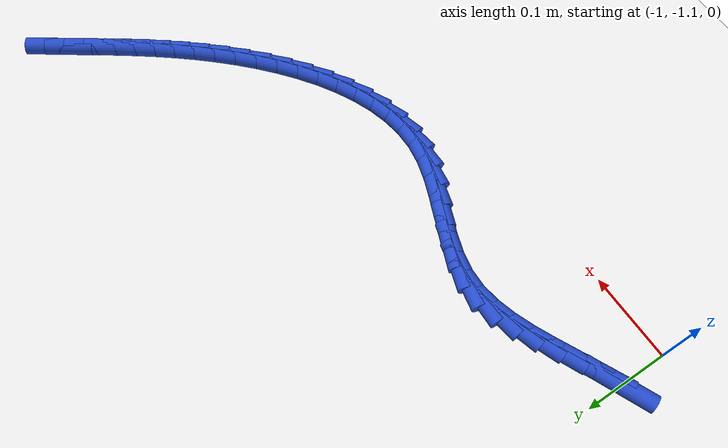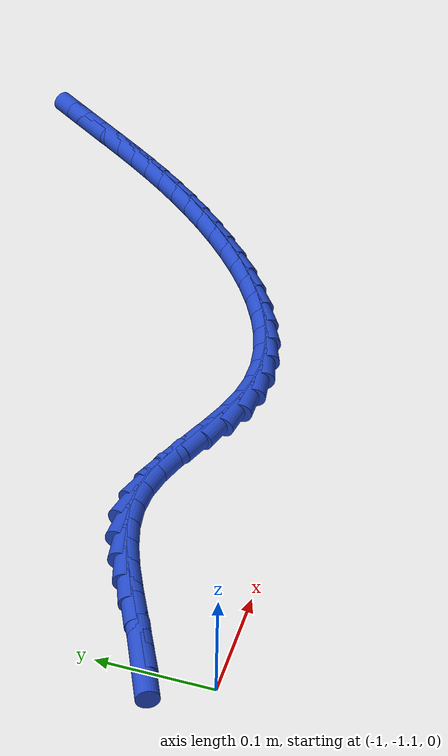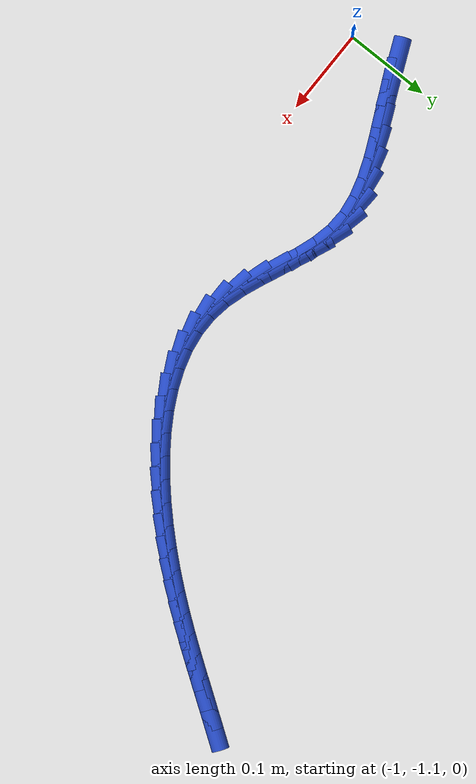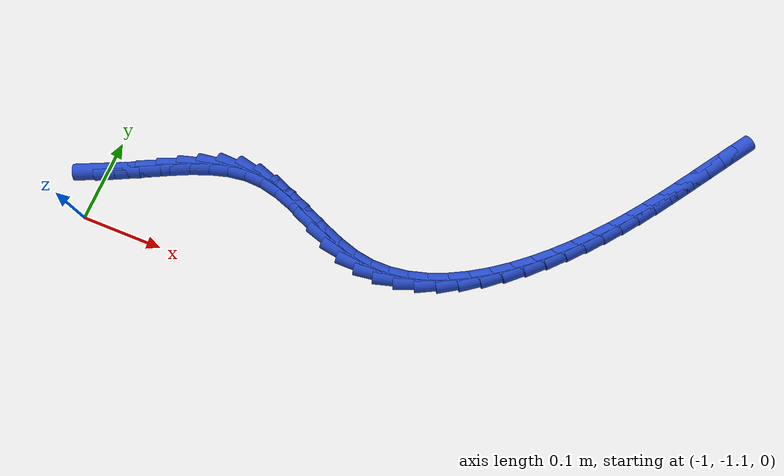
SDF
<sdf version="1.6">
 <world name="default">
  <model name="ground_plane">
   <static>1</static>
   <link name="link">
    <collision name="collision">
     <geometry><plane><normal>0 0 1</normal><size>100 100</size></plane></geometry>
     <surface><friction><ode><mu>100</mu><mu2>50</mu2></ode></friction></surface>
    </collision>
    <visual name="visual">
     <cast_shadows>0</cast_shadows>
     <geometry><plane><normal>0 0 1</normal><size>100 100</size></plane></geometry>
     <material>
      <script><uri>file://media/materials/scripts/gazebo.material</uri><name>Gazebo/WhiteGlow</name></script>
     </material>
    </visual>
   </link>
  </model>
  <model name="line">
   <link name="link_211">
    <pose>-0.9968731925004047 -1.0389388240476132 0.01 0 1.57 0.419564557038554</pose>
    <collision name="collision">
     <geometry><cylinder><radius>0.01</radius><length>0.08</length></cylinder></geometry>
    </collision>
    <visual name="visual">
     <material>
      <script><name>Gazebo/Blue</name><uri>file://media/materials/scripts/gazebo.material</uri></script>
     </material>
     <geometry><cylinder><radius>0.01</radius><length>0.08</length></cylinder></geometry>
    </visual>
   </link>
   <link name="link_212">
    <pose>-0.9742843106330069 -1.0288630450292005 0.01 0 1.57 0.45181146695604313</pose>
    <collision name="collision">
     <geometry><cylinder><radius>0.01</radius><length>0.08</length></cylinder></geometry>
    </collision>
    <visual name="visual">
     <material>
      <script><name>Gazebo/Blue</name><uri>file://media/materials/scripts/gazebo.material</uri></script>
     </material>
     <geometry><cylinder><radius>0.01</radius><length>0.08</length></cylinder></geometry>
    </visual>
   </link>
   <link name="link_213">
    <pose>-0.9517800366374914 -1.017941919270687 0.01 0 1.57 0.45444266028596175</pose>
    <collision name="collision">
     <geometry><cylinder><radius>0.01</radius><length>0.08</length></cylinder></geometry>
    </collision>
    <visual name="visual">
     <material>
      <script><name>Gazebo/Blue</name><uri>file://media/materials/scripts/gazebo.material</uri></script>
     </material>
     <geometry><cylinder><radius>0.01</radius><length>0.08</length></cylinder></geometry>
    </visual>
   </link>
   <link name="link_214">
    <pose>-0.9293437762485094 -1.0069807693718802 0.01 0 1.57 0.42740189036947934</pose>
    <collision name="collision">
     <geometry><cylinder><radius>0.01</radius><length>0.08</length></cylinder></geometry>
    </collision>
    <visual name="visual">
     <material>
      <script><name>Gazebo/Blue</name><uri>file://media/materials/scripts/gazebo.material</uri></script>
     </material>
     <geometry><cylinder><radius>0.01</radius><length>0.08</length></cylinder></geometry>
    </visual>
   </link>
   <link name="link_215">
    <pose>-0.9069589352007125 -0.9967849179325879 0.01 0 1.57 0.36830641305981954</pose>
    <collision name="collision">
     <geometry><cylinder><radius>0.01</radius><length>0.08</length></cylinder></geometry>
    </collision>
    <visual name="visual">
     <material>
      <script><name>Gazebo/Blue</name><uri>file://media/materials/scripts/gazebo.material</uri></script>
     </material>
     <geometry><cylinder><radius>0.01</radius><length>0.08</length></cylinder></geometry>
    </visual>
   </link>
   <link name="link_216">
    <pose>-0.8846089192287524 -0.9881596875526178 0.01 0 1.57 0.2728586662731743</pose>
    <collision name="collision">
     <geometry><cylinder><radius>0.01</radius><length>0.08</length></cylinder></geometry>
    </collision>
    <visual name="visual">
     <material>
      <script><name>Gazebo/Blue</name><uri>file://media/materials/scripts/gazebo.material</uri></script>
     </material>
     <geometry><cylinder><radius>0.01</radius><length>0.08</length></cylinder></geometry>
    </visual>
   </link>
   <link name="link_217">
    <pose>-0.8622771340672796 -0.9819104008317774 0.01 0 1.57 0.13653877726404418</pose>
    <collision name="collision">
     <geometry><cylinder><radius>0.01</radius><length>0.08</length></cylinder></geometry>
    </collision>
    <visual name="visual">
     <material>
      <script><name>Gazebo/Blue</name><uri>file://media/materials/scripts/gazebo.material</uri></script>
     </material>
     <geometry><cylinder><radius>0.01</radius><length>0.08</length></cylinder></geometry>
    </visual>
   </link>
   <link name="link_218">
    <pose>-0.8399469854509473 -0.9788423803698753 0.01 0 1.57 -0.040540378335870896</pose>
    <collision name="collision">
     <geometry><cylinder><radius>0.01</radius><length>0.08</length></cylinder></geometry>
    </collision>
    <visual name="visual">
     <material>
      <script><name>Gazebo/Blue</name><uri>file://media/materials/scripts/gazebo.material</uri></script>
     </material>
     <geometry><cylinder><radius>0.01</radius><length>0.08</length></cylinder></geometry>
    </visual>
   </link>
   <link name="link_219">
    <pose>-0.8176018976384558 -0.9797487552872787 0.01 0 1.57 -0.21650716110513113</pose>
    <collision name="collision">
     <geometry><cylinder><radius>0.01</radius><length>0.08</length></cylinder></geometry>
    </collision>
    <visual name="visual">
     <material>
      <script><name>Gazebo/Blue</name><uri>file://media/materials/scripts/gazebo.material</uri></script>
     </material>
     <geometry><cylinder><radius>0.01</radius><length>0.08</length></cylinder></geometry>
    </visual>
   </link>
   <link name="link_220">
    <pose>-0.7952264377808024 -0.984670344378 0.01 0 1.57 -0.33479258366477077</pose>
    <collision name="collision">
     <geometry><cylinder><radius>0.01</radius><length>0.08</length></cylinder></geometry>
    </collision>
    <visual name="visual">
     <material>
      <script><name>Gazebo/Blue</name><uri>file://media/materials/scripts/gazebo.material</uri></script>
     </material>
     <geometry><cylinder><radius>0.01</radius><length>0.08</length></cylinder></geometry>
    </visual>
   </link>
   <link name="link_221">
    <pose>-0.7728069628360114 -0.9924698236556881 0.01 0 1.57 -0.3975125090517236</pose>
    <collision name="collision">
     <geometry><cylinder><radius>0.01</radius><length>0.08</length></cylinder></geometry>
    </collision>
    <visual name="visual">
     <material>
      <script><name>Gazebo/Blue</name><uri>file://media/materials/scripts/gazebo.material</uri></script>
     </material>
     <geometry><cylinder><radius>0.01</radius><length>0.08</length></cylinder></geometry>
    </visual>
   </link>
   <link name="link_222">
    <pose>-0.7503299858857498 -1.0019071005451383 0.01 0 1.57 -0.4113023493079876</pose>
    <collision name="collision">
     <geometry><cylinder><radius>0.01</radius><length>0.08</length></cylinder></geometry>
    </collision>
    <visual name="visual">
     <material>
      <script><name>Gazebo/Blue</name><uri>file://media/materials/scripts/gazebo.material</uri></script>
     </material>
     <geometry><cylinder><radius>0.01</radius><length>0.08</length></cylinder></geometry>
    </visual>
   </link>
   <link name="link_223">
    <pose>-0.7277820200116841 -1.0117420824711458 0.01 0 1.57 -0.37820430350389667</pose>
    <collision name="collision">
     <geometry><cylinder><radius>0.01</radius><length>0.08</length></cylinder></geometry>
    </collision>
    <visual name="visual">
     <material>
      <script><name>Gazebo/Blue</name><uri>file://media/materials/scripts/gazebo.material</uri></script>
     </material>
     <geometry><cylinder><radius>0.01</radius><length>0.08</length></cylinder></geometry>
    </visual>
   </link>
   <link name="link_224">
    <pose>-0.7051495782954812 -1.0207346768585064 0.01 0 1.57 -0.2951253391175788</pose>
    <collision name="collision">
     <geometry><cylinder><radius>0.01</radius><length>0.08</length></cylinder></geometry>
    </collision>
    <visual name="visual">
     <material>
      <script><name>Gazebo/Blue</name><uri>file://media/materials/scripts/gazebo.material</uri></script>
     </material>
     <geometry><cylinder><radius>0.01</radius><length>0.08</length></cylinder></geometry>
    </visual>
   </link>
   <link name="link_225">
    <pose>-0.6824191738188075 -1.0276447911320146 0.01 0 1.57 -0.15804007501959652</pose>
    <collision name="collision">
     <geometry><cylinder><radius>0.01</radius><length>0.08</length></cylinder></geometry>
    </collision>
    <visual name="visual">
     <material>
      <script><name>Gazebo/Blue</name><uri>file://media/materials/scripts/gazebo.material</uri></script>
     </material>
     <geometry><cylinder><radius>0.01</radius><length>0.08</length></cylinder></geometry>
    </visual>
   </link>
   <link name="link_226">
    <pose>-0.6595813993898523 -1.0312844272838904 0.01 0 1.57 -0.0004760070906418708</pose>
    <collision name="collision">
     <geometry><cylinder><radius>0.01</radius><length>0.08</length></cylinder></geometry>
    </collision>
    <visual name="visual">
     <material>
      <script><name>Gazebo/Blue</name><uri>file://media/materials/scripts/gazebo.material</uri></script>
     </material>
     <geometry><cylinder><radius>0.01</radius><length>0.08</length></cylinder></geometry>
    </visual>
   </link>
   <link name="link_227">
    <pose>-0.6366918276104232 -1.031295322883182 0.01 0 1.57 0.14398681662672275</pose>
    <collision name="collision">
     <geometry><cylinder><radius>0.01</radius><length>0.08</length></cylinder></geometry>
    </collision>
    <visual name="visual">
     <material>
      <script><name>Gazebo/Blue</name><uri>file://media/materials/scripts/gazebo.material</uri></script>
     </material>
     <geometry><cylinder><radius>0.01</radius><length>0.08</length></cylinder></geometry>
    </visual>
   </link>
   <link name="link_228">
    <pose>-0.6138581448281326 -1.0279846628100278 0.01 0 1.57 0.2713338922734599</pose>
    <collision name="collision">
     <geometry><cylinder><radius>0.01</radius><length>0.08</length></cylinder></geometry>
    </collision>
    <visual name="visual">
     <material>
      <script><name>Gazebo/Blue</name><uri>file://media/materials/scripts/gazebo.material</uri></script>
     </material>
     <geometry><cylinder><radius>0.01</radius><length>0.08</length></cylinder></geometry>
    </visual>
   </link>
   <link name="link_229">
    <pose>-0.5911895045721061 -1.021678366579299 0.01 0 1.57 0.38120813951009463</pose>
    <collision name="collision">
     <geometry><cylinder><radius>0.01</radius><length>0.08</length></cylinder></geometry>
    </collision>
    <visual name="visual">
     <material>
      <script><name>Gazebo/Blue</name><uri>file://media/materials/scripts/gazebo.material</uri></script>
     </material>
     <geometry><cylinder><radius>0.01</radius><length>0.08</length></cylinder></geometry>
    </visual>
   </link>
   <link name="link_230">
    <pose>-0.5687950603714688 -1.0127023537058661 0.01 0 1.57 0.4750042346008791</pose>
    <collision name="collision">
     <geometry><cylinder><radius>0.01</radius><length>0.08</length></cylinder></geometry>
    </collision>
    <visual name="visual">
     <material>
      <script><name>Gazebo/Blue</name><uri>file://media/materials/scripts/gazebo.material</uri></script>
     </material>
     <geometry><cylinder><radius>0.01</radius><length>0.08</length></cylinder></geometry>
    </visual>
   </link>
   <link name="link_231">
    <pose>-0.5467839657553458 -1.0013825437045996 0.01 0 1.57 0.5548668458183431</pose>
    <collision name="collision">
     <geometry><cylinder><radius>0.01</radius><length>0.08</length></cylinder></geometry>
    </collision>
    <visual name="visual">
     <material>
      <script><name>Gazebo/Blue</name><uri>file://media/materials/scripts/gazebo.material</uri></script>
     </material>
     <geometry><cylinder><radius>0.01</radius><length>0.08</length></cylinder></geometry>
    </visual>
   </link>
   <link name="link_232">
    <pose>-0.5252653742528629 -0.9880448560903706 0.01 0 1.57 0.6230605755689698</pose>
    <collision name="collision">
     <geometry><cylinder><radius>0.01</radius><length>0.08</length></cylinder></geometry>
    </collision>
    <visual name="visual">
     <material>
      <script><name>Gazebo/Blue</name><uri>file://media/materials/scripts/gazebo.material</uri></script>
     </material>
     <geometry><cylinder><radius>0.01</radius><length>0.08</length></cylinder></geometry>
    </visual>
   </link>
   <link name="link_233">
    <pose>-0.5043484393931451 -0.9730152103780496 0.01 0 1.57 0.6816665829580871</pose>
    <collision name="collision">
     <geometry><cylinder><radius>0.01</radius><length>0.08</length></cylinder></geometry>
    </collision>
    <visual name="visual">
     <material>
      <script><name>Gazebo/Blue</name><uri>file://media/materials/scripts/gazebo.material</uri></script>
     </material>
     <geometry><cylinder><radius>0.01</radius><length>0.08</length></cylinder></geometry>
    </visual>
   </link>
   <link name="link_234">
    <pose>-0.4841423147053171 -0.9566195260825063 0.01 0 1.57 0.732480379303455</pose>
    <collision name="collision">
     <geometry><cylinder><radius>0.01</radius><length>0.08</length></cylinder></geometry>
    </collision>
    <visual name="visual">
     <material>
      <script><name>Gazebo/Blue</name><uri>file://media/materials/scripts/gazebo.material</uri></script>
     </material>
     <geometry><cylinder><radius>0.01</radius><length>0.08</length></cylinder></geometry>
    </visual>
   </link>
   <link name="link_235">
    <pose>-0.4647561537185058 -0.9391837227186134 0.01 0 1.57 0.7770108809639055</pose>
    <collision name="collision">
     <geometry><cylinder><radius>0.01</radius><length>0.08</length></cylinder></geometry>
    </collision>
    <visual name="visual">
     <material>
      <script><name>Gazebo/Blue</name><uri>file://media/materials/scripts/gazebo.material</uri></script>
     </material>
     <geometry><cylinder><radius>0.01</radius><length>0.08</length></cylinder></geometry>
    </visual>
   </link>
   <link name="link_236">
    <pose>-0.44629910996183547 -0.92103371980124 0.01 0 1.57 0.8165307048601633</pose>
    <collision name="collision">
     <geometry><cylinder><radius>0.01</radius><length>0.08</length></cylinder></geometry>
    </collision>
    <visual name="visual">
     <material>
      <script><name>Gazebo/Blue</name><uri>file://media/materials/scripts/gazebo.material</uri></script>
     </material>
     <geometry><cylinder><radius>0.01</radius><length>0.08</length></cylinder></geometry>
    </visual>
   </link>
   <link name="link_237">
    <pose>-0.4288778734544607 -0.9024925193754326 0.01 0 1.57 0.8522145266007997</pose>
    <collision name="collision">
     <geometry><cylinder><radius>0.01</radius><length>0.08</length></cylinder></geometry>
    </collision>
    <visual name="visual">
     <material>
      <script><name>Gazebo/Blue</name><uri>file://media/materials/scripts/gazebo.material</uri></script>
     </material>
     <geometry><cylinder><radius>0.01</radius><length>0.08</length></cylinder></geometry>
    </visual>
   </link>
   <link name="link_238">
    <pose>-0.4124963583918287 -0.8837614087913727 0.01 0 1.57 0.8842422811227154</pose>
    <collision name="collision">
     <geometry><cylinder><radius>0.01</radius><length>0.08</length></cylinder></geometry>
    </collision>
    <visual name="visual">
     <material>
      <script><name>Gazebo/Blue</name><uri>file://media/materials/scripts/gazebo.material</uri></script>
     </material>
     <geometry><cylinder><radius>0.01</radius><length>0.08</length></cylinder></geometry>
    </visual>
   </link>
   <link name="link_239">
    <pose>-0.39702076830778965 -0.8648785882981009 0.01 0 1.57 0.912074942755448</pose>
    <collision name="collision">
     <geometry><cylinder><radius>0.01</radius><length>0.08</length></cylinder></geometry>
    </collision>
    <visual name="visual">
     <material>
      <script><name>Gazebo/Blue</name><uri>file://media/materials/scripts/gazebo.material</uri></script>
     </material>
     <geometry><cylinder><radius>0.01</radius><length>0.08</length></cylinder></geometry>
    </visual>
   </link>
   <link name="link_240">
    <pose>-0.3823076681960426 -0.845870843476003 0.01 0 1.57 0.9352261819664094</pose>
    <collision name="collision">
     <geometry><cylinder><radius>0.01</radius><length>0.08</length></cylinder></geometry>
    </collision>
    <visual name="visual">
     <material>
      <script><name>Gazebo/Blue</name><uri>file://media/materials/scripts/gazebo.material</uri></script>
     </material>
     <geometry><cylinder><radius>0.01</radius><length>0.08</length></cylinder></geometry>
    </visual>
   </link>
   <link name="link_241">
    <pose>-0.36821362305028665 -0.8267649599054636 0.01 0 1.57 0.9533007493648838</pose>
    <collision name="collision">
     <geometry><cylinder><radius>0.01</radius><length>0.08</length></cylinder></geometry>
    </collision>
    <visual name="visual">
     <material>
      <script><name>Gazebo/Blue</name><uri>file://media/materials/scripts/gazebo.material</uri></script>
     </material>
     <geometry><cylinder><radius>0.01</radius><length>0.08</length></cylinder></geometry>
    </visual>
   </link>
   <link name="link_242">
    <pose>-0.35459519786422083 -0.807587723166868 0.01 0 1.57 0.9659963071160778</pose>
    <collision name="collision">
     <geometry><cylinder><radius>0.01</radius><length>0.08</length></cylinder></geometry>
    </collision>
    <visual name="visual">
     <material>
      <script><name>Gazebo/Blue</name><uri>file://media/materials/scripts/gazebo.material</uri></script>
     </material>
     <geometry><cylinder><radius>0.01</radius><length>0.08</length></cylinder></geometry>
    </visual>
   </link>
   <link name="link_243">
    <pose>-0.34130895763154384 -0.788365918840601 0.01 0 1.57 0.9731019525174079</pose>
    <collision name="collision">
     <geometry><cylinder><radius>0.01</radius><length>0.08</length></cylinder></geometry>
    </collision>
    <visual name="visual">
     <material>
      <script><name>Gazebo/Blue</name><uri>file://media/materials/scripts/gazebo.material</uri></script>
     </material>
     <geometry><cylinder><radius>0.01</radius><length>0.08</length></cylinder></geometry>
    </visual>
   </link>
   <link name="link_244">
    <pose>-0.32821146734595547 -0.7691263325070485 0.01 0 1.57 0.9744956692608707</pose>
    <collision name="collision">
     <geometry><cylinder><radius>0.01</radius><length>0.08</length></cylinder></geometry>
    </collision>
    <visual name="visual">
     <material>
      <script><name>Gazebo/Blue</name><uri>file://media/materials/scripts/gazebo.material</uri></script>
     </material>
     <geometry><cylinder><radius>0.01</radius><length>0.08</length></cylinder></geometry>
    </visual>
   </link>
   <link name="link_245">
    <pose>-0.31515929200115433 -0.7498957497465956 0.01 0 1.57 0.9701425608918123</pose>
    <collision name="collision">
     <geometry><cylinder><radius>0.01</radius><length>0.08</length></cylinder></geometry>
    </collision>
    <visual name="visual">
     <material>
      <script><name>Gazebo/Blue</name><uri>file://media/materials/scripts/gazebo.material</uri></script>
     </material>
     <geometry><cylinder><radius>0.01</radius><length>0.08</length></cylinder></geometry>
    </visual>
   </link>
  </model>
 </world>
</sdf>
